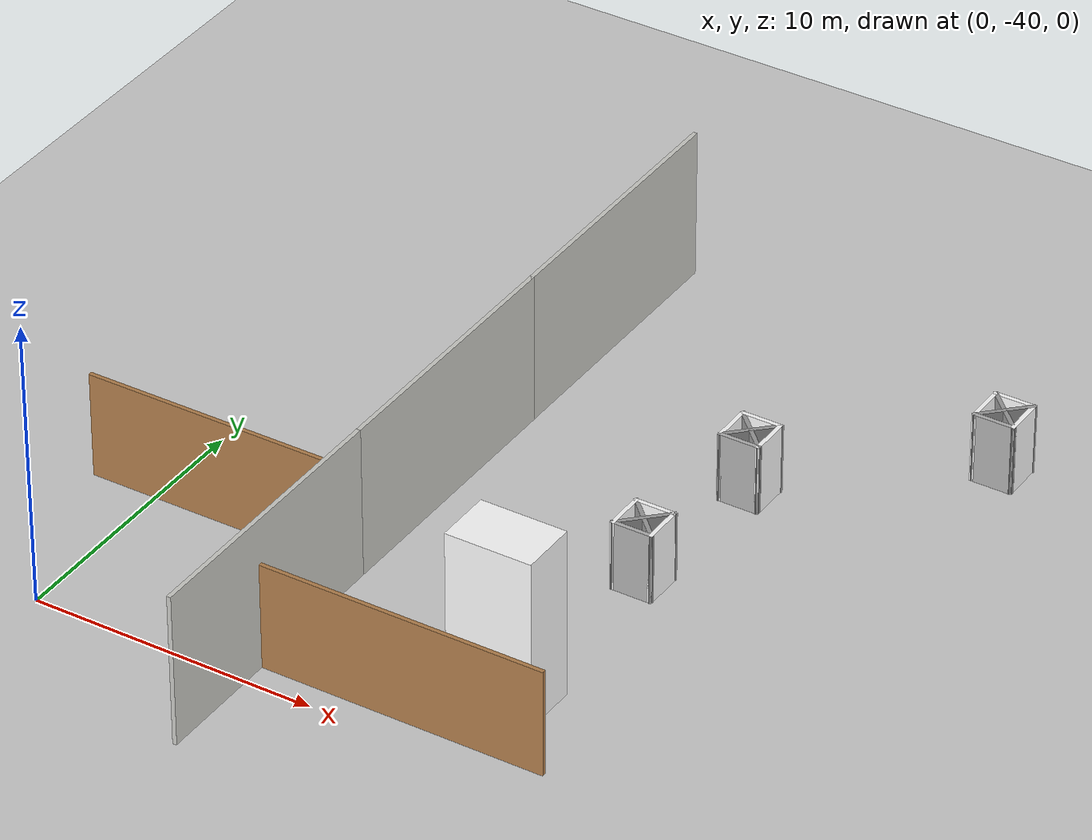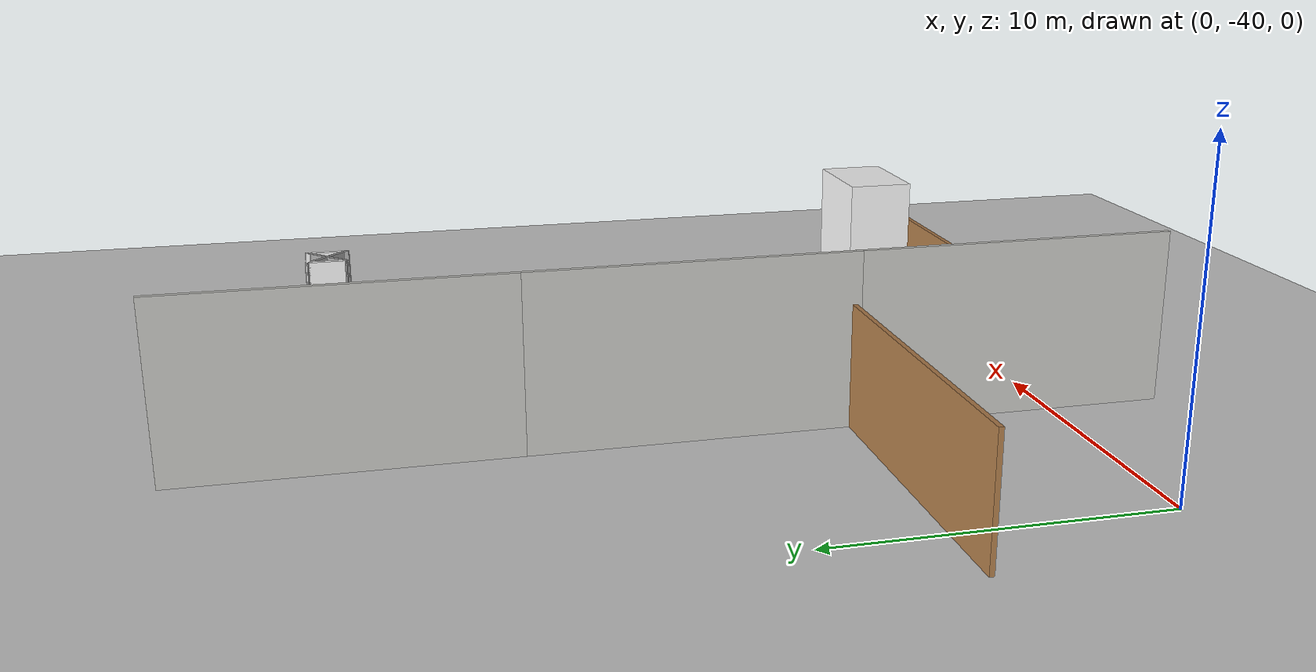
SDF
<sdf version="1.7">
 <world name="default">
  <model name="ground_plane">
   <static>1</static>
   <link name="link">
    <collision name="collision">
     <geometry><plane><normal>0 0 1</normal><size>100 100</size></plane></geometry>
     <surface>
      <contact><collide_bitmask>65535</collide_bitmask></contact>
      <friction><ode><mu>100</mu><mu2>50</mu2></ode></friction>
     </surface>
    </collision>
    <visual name="visual">
     <cast_shadows>0</cast_shadows>
     <geometry><plane><normal>0 0 1</normal><size>100 100</size></plane></geometry>
     <material>
      <script><uri>file://media/materials/scripts/gazebo.material</uri><name>Gazebo/Grey</name></script>
     </material>
    </visual>
   </link>
  </model>
  <model name="Untitled_clone_clone_1_clone_1_clone_0">
   <link name="Wall_0">
    <pose>-0.8775 -4.2975 0 0 -0 0</pose>
    <inertial>
     <mass>1</mass>
     <inertia><ixx>1</ixx><ixy>0</ixy><ixz>0</ixz><iyy>1</iyy><iyz>0</iyz><izz>1</izz></inertia>
    </inertial>
    <visual name="Wall_0_Visual">
     <pose>0 0 1.9 0 -0 0</pose>
     <geometry><box><size>10 0.15 3.8</size></box></geometry>
     <material>
      <script><uri>file://media/materials/scripts/gazebo.material</uri><name>Gazebo/Wood</name></script>
      <ambient>1 1 1 1</ambient>
      <shader type="pixel"><normal_map>__default__</normal_map></shader>
      <diffuse>1 1 1 1</diffuse>
      <specular>0.2 0.2 0.2 1</specular>
      <emissive>0 0 0 1</emissive>
     </material>
     <meta><layer>0</layer></meta>
    </visual>
    <collision name="Wall_0_Collision">
     <pose>0 0 1.9 0 -0 0</pose>
     <geometry><box><size>10 0.15 3.8</size></box></geometry>
     <surface>
      <friction>
       <ode><mu>1</mu><mu2>1</mu2><fdir1>0 0 0</fdir1><slip1>0</slip1><slip2>0</slip2></ode>
       <torsional>
        <coefficient>1</coefficient>
        <patch_radius>0</patch_radius>
        <surface_radius>0</surface_radius>
        <use_patch_radius>1</use_patch_radius>
        <ode><slip>0</slip></ode>
       </torsional>
      </friction>
      <bounce><restitution_coefficient>0</restitution_coefficient><threshold>1e+06</threshold></bounce>
      <contact>
       <collide_without_contact>0</collide_without_contact>
       <collide_without_contact_bitmask>1</collide_without_contact_bitmask>
       <collide_bitmask>1</collide_bitmask>
       <ode>
        <soft_cfm>0</soft_cfm>
        <soft_erp>0.2</soft_erp>
        <kp>1e+13</kp>
        <kd>1</kd>
        <max_vel>0.01</max_vel>
        <min_depth>0</min_depth>
       </ode>
       <bullet>
        <split_impulse>1</split_impulse>
        <split_impulse_penetration_threshold>-0.01</split_impulse_penetration_threshold>
        <soft_cfm>0</soft_cfm>
        <soft_erp>0.2</soft_erp>
        <kp>1e+13</kp>
        <kd>1</kd>
       </bullet>
      </contact>
     </surface>
    </collision>
   </link>
   <static>1</static>
   <pose>3.52995 -29.3125 0 0 -0 0</pose>
  </model>
  <model name="Untitled_0_clone_6">
   <link name="Wall_2">
    <pose>-0.3075 -1.8625 0 0 0 -1.5708</pose>
    <inertial>
     <mass>1</mass>
     <inertia><ixx>1</ixx><ixy>0</ixy><ixz>0</ixz><iyy>1</iyy><iyz>0</iyz><izz>1</izz></inertia>
    </inertial>
    <visual name="Wall_2_Visual">
     <pose>0 0 2.7 0 -0 0</pose>
     <geometry><box><size>10 0.15 5.4</size></box></geometry>
     <material>
      <script><uri>file://media/materials/scripts/gazebo.material</uri><name>Gazebo/CeilingTiled</name></script>
      <ambient>1 1 1 1</ambient>
      <shader type="pixel"><normal_map>__default__</normal_map></shader>
      <diffuse>1 1 1 1</diffuse>
      <specular>0 0 0 1</specular>
      <emissive>0 0 0 1</emissive>
     </material>
     <meta><layer>0</layer></meta>
    </visual>
    <collision name="Wall_2_Collision">
     <pose>0 0 2.7 0 -0 0</pose>
     <geometry><box><size>10 0.15 5.4</size></box></geometry>
     <surface>
      <friction>
       <ode><mu>1</mu><mu2>1</mu2><fdir1>0 0 0</fdir1><slip1>0</slip1><slip2>0</slip2></ode>
       <torsional>
        <coefficient>1</coefficient>
        <patch_radius>0</patch_radius>
        <surface_radius>0</surface_radius>
        <use_patch_radius>1</use_patch_radius>
        <ode><slip>0</slip></ode>
       </torsional>
      </friction>
      <bounce><restitution_coefficient>0</restitution_coefficient><threshold>1e+06</threshold></bounce>
      <contact>
       <collide_without_contact>0</collide_without_contact>
       <collide_without_contact_bitmask>1</collide_without_contact_bitmask>
       <collide_bitmask>1</collide_bitmask>
       <ode>
        <soft_cfm>0</soft_cfm>
        <soft_erp>0.2</soft_erp>
        <kp>1e+13</kp>
        <kd>1</kd>
        <max_vel>0.01</max_vel>
        <min_depth>0</min_depth>
       </ode>
       <bullet>
        <split_impulse>1</split_impulse>
        <split_impulse_penetration_threshold>-0.01</split_impulse_penetration_threshold>
        <soft_cfm>0</soft_cfm>
        <soft_erp>0.2</soft_erp>
        <kp>1e+13</kp>
        <kd>1</kd>
       </bullet>
      </contact>
     </surface>
    </collision>
   </link>
   <static>1</static>
   <pose>7.95129 -36.7731 0 0 -0 0</pose>
  </model>
  <model name="Untitled_clone_clone_1_clone_1_clone_1">
   <link name="Wall_0">
    <pose>-0.8775 -4.2975 0 0 -0 0</pose>
    <inertial>
     <mass>1</mass>
     <inertia><ixx>1</ixx><ixy>0</ixy><ixz>0</ixz><iyy>1</iyy><iyz>0</iyz><izz>1</izz></inertia>
    </inertial>
    <visual name="Wall_0_Visual">
     <pose>0 0 1.9 0 -0 0</pose>
     <geometry><box><size>10 0.15 3.8</size></box></geometry>
     <material>
      <script><uri>file://media/materials/scripts/gazebo.material</uri><name>Gazebo/Wood</name></script>
      <ambient>1 1 1 1</ambient>
      <shader type="pixel"><normal_map>__default__</normal_map></shader>
      <diffuse>1 1 1 1</diffuse>
      <specular>0.2 0.2 0.2 1</specular>
      <emissive>0 0 0 1</emissive>
     </material>
     <meta><layer>0</layer></meta>
    </visual>
    <collision name="Wall_0_Collision">
     <pose>0 0 1.9 0 -0 0</pose>
     <geometry><box><size>10 0.15 3.8</size></box></geometry>
     <surface>
      <friction>
       <ode><mu>1</mu><mu2>1</mu2><fdir1>0 0 0</fdir1><slip1>0</slip1><slip2>0</slip2></ode>
       <torsional>
        <coefficient>1</coefficient>
        <patch_radius>0</patch_radius>
        <surface_radius>0</surface_radius>
        <use_patch_radius>1</use_patch_radius>
        <ode><slip>0</slip></ode>
       </torsional>
      </friction>
      <bounce><restitution_coefficient>0</restitution_coefficient><threshold>1e+06</threshold></bounce>
      <contact>
       <collide_without_contact>0</collide_without_contact>
       <collide_without_contact_bitmask>1</collide_without_contact_bitmask>
       <collide_bitmask>1</collide_bitmask>
       <ode>
        <soft_cfm>0</soft_cfm>
        <soft_erp>0.2</soft_erp>
        <kp>1e+13</kp>
        <kd>1</kd>
        <max_vel>0.01</max_vel>
        <min_depth>0</min_depth>
       </ode>
       <bullet>
        <split_impulse>1</split_impulse>
        <split_impulse_penetration_threshold>-0.01</split_impulse_penetration_threshold>
        <soft_cfm>0</soft_cfm>
        <soft_erp>0.2</soft_erp>
        <kp>1e+13</kp>
        <kd>1</kd>
       </bullet>
      </contact>
     </surface>
    </collision>
   </link>
   <static>1</static>
   <pose>13.5348 -34.785 0 0 -0 0</pose>
  </model>
  <model name="Untitled_clone_clone_0_clone_clone_0_clone_0_clone_0_clone_0_clone_clone_2">
   <link name="Wall_0">
    <pose>-0.877501 -4.2975 0 0 -0 0</pose>
    <inertial>
     <mass>1</mass>
     <inertia><ixx>1</ixx><ixy>0</ixy><ixz>0</ixz><iyy>1</iyy><iyz>0</iyz><izz>1</izz></inertia>
    </inertial>
    <visual name="Wall_0_Visual">
     <pose>0 0 3 0 -0 0</pose>
     <geometry><box><size>3 2 6</size></box></geometry>
     <material>
      <script><uri>file://media/materials/scripts/gazebo.material</uri><name>Gazebo/CoM</name></script>
      <ambient>1 1 1 1</ambient>
      <shader type="pixel"><normal_map>__default__</normal_map></shader>
      <diffuse>1 1 1 1</diffuse>
      <specular>0.2 0.2 0.2 1</specular>
      <emissive>0 0 0 1</emissive>
     </material>
     <meta><layer>0</layer></meta>
    </visual>
    <collision name="Wall_0_Collision">
     <pose>0 0 3 0 -0 0</pose>
     <geometry><box><size>3 2 6</size></box></geometry>
     <surface>
      <friction>
       <ode><mu>1</mu><mu2>1</mu2><fdir1>0 0 0</fdir1><slip1>0</slip1><slip2>0</slip2></ode>
       <torsional>
        <coefficient>1</coefficient>
        <patch_radius>0</patch_radius>
        <surface_radius>0</surface_radius>
        <use_patch_radius>1</use_patch_radius>
        <ode><slip>0</slip></ode>
       </torsional>
      </friction>
      <bounce><restitution_coefficient>0</restitution_coefficient><threshold>1e+06</threshold></bounce>
      <contact>
       <collide_without_contact>0</collide_without_contact>
       <collide_without_contact_bitmask>1</collide_without_contact_bitmask>
       <collide_bitmask>1</collide_bitmask>
       <ode>
        <soft_cfm>0</soft_cfm>
        <soft_erp>0.2</soft_erp>
        <kp>1e+13</kp>
        <kd>1</kd>
        <max_vel>0.01</max_vel>
        <min_depth>0</min_depth>
       </ode>
       <bullet>
        <split_impulse>1</split_impulse>
        <split_impulse_penetration_threshold>-0.01</split_impulse_penetration_threshold>
        <soft_cfm>0</soft_cfm>
        <soft_erp>0.2</soft_erp>
        <kp>1e+13</kp>
        <kd>1</kd>
       </bullet>
      </contact>
     </surface>
    </collision>
   </link>
   <static>1</static>
   <pose>15.5462 -32.1301 0 0 -0 0</pose>
  </model>
  <model name="Untitled_0_clone_6_clone_0">
   <link name="Wall_2">
    <pose>-0.3075 -1.8625 0 0 0 -1.5708</pose>
    <inertial>
     <mass>1</mass>
     <inertia><ixx>1</ixx><ixy>0</ixy><ixz>0</ixz><iyy>1</iyy><iyz>0</iyz><izz>1</izz></inertia>
    </inertial>
    <visual name="Wall_2_Visual">
     <pose>0 0 2.7 0 -0 0</pose>
     <geometry><box><size>10 0.15 5.4</size></box></geometry>
     <material>
      <script><uri>file://media/materials/scripts/gazebo.material</uri><name>Gazebo/CeilingTiled</name></script>
      <ambient>1 1 1 1</ambient>
      <shader type="pixel"><normal_map>__default__</normal_map></shader>
      <diffuse>1 1 1 1</diffuse>
      <specular>0 0 0 1</specular>
      <emissive>0 0 0 1</emissive>
     </material>
     <meta><layer>0</layer></meta>
    </visual>
    <collision name="Wall_2_Collision">
     <pose>0 0 2.7 0 -0 0</pose>
     <geometry><box><size>10 0.15 5.4</size></box></geometry>
     <surface>
      <friction>
       <ode><mu>1</mu><mu2>1</mu2><fdir1>0 0 0</fdir1><slip1>0</slip1><slip2>0</slip2></ode>
       <torsional>
        <coefficient>1</coefficient>
        <patch_radius>0</patch_radius>
        <surface_radius>0</surface_radius>
        <use_patch_radius>1</use_patch_radius>
        <ode><slip>0</slip></ode>
       </torsional>
      </friction>
      <bounce><restitution_coefficient>0</restitution_coefficient><threshold>1e+06</threshold></bounce>
      <contact>
       <collide_without_contact>0</collide_without_contact>
       <collide_without_contact_bitmask>1</collide_without_contact_bitmask>
       <collide_bitmask>1</collide_bitmask>
       <ode>
        <soft_cfm>0</soft_cfm>
        <soft_erp>0.2</soft_erp>
        <kp>1e+13</kp>
        <kd>1</kd>
        <max_vel>0.01</max_vel>
        <min_depth>0</min_depth>
       </ode>
       <bullet>
        <split_impulse>1</split_impulse>
        <split_impulse_penetration_threshold>-0.01</split_impulse_penetration_threshold>
        <soft_cfm>0</soft_cfm>
        <soft_erp>0.2</soft_erp>
        <kp>1e+13</kp>
        <kd>1</kd>
       </bullet>
      </contact>
     </surface>
    </collision>
   </link>
   <static>1</static>
   <pose>7.94933 -26.9586 0 0 -0 0</pose>
  </model>
  <model name="Untitled_0_clone_6_clone_1">
   <link name="Wall_2">
    <pose>-0.3075 -1.8625 0 0 0 -1.5708</pose>
    <inertial>
     <mass>1</mass>
     <inertia><ixx>1</ixx><ixy>0</ixy><ixz>0</ixz><iyy>1</iyy><iyz>0</iyz><izz>1</izz></inertia>
    </inertial>
    <visual name="Wall_2_Visual">
     <pose>0 0 2.7 0 -0 0</pose>
     <geometry><box><size>10 0.15 5.4</size></box></geometry>
     <material>
      <script><uri>file://media/materials/scripts/gazebo.material</uri><name>Gazebo/CeilingTiled</name></script>
      <ambient>1 1 1 1</ambient>
      <shader type="pixel"><normal_map>__default__</normal_map></shader>
      <diffuse>1 1 1 1</diffuse>
      <specular>0 0 0 1</specular>
      <emissive>0 0 0 1</emissive>
     </material>
     <meta><layer>0</layer></meta>
    </visual>
    <collision name="Wall_2_Collision">
     <pose>0 0 2.7 0 -0 0</pose>
     <geometry><box><size>10 0.15 5.4</size></box></geometry>
     <surface>
      <friction>
       <ode><mu>1</mu><mu2>1</mu2><fdir1>0 0 0</fdir1><slip1>0</slip1><slip2>0</slip2></ode>
       <torsional>
        <coefficient>1</coefficient>
        <patch_radius>0</patch_radius>
        <surface_radius>0</surface_radius>
        <use_patch_radius>1</use_patch_radius>
        <ode><slip>0</slip></ode>
       </torsional>
      </friction>
      <bounce><restitution_coefficient>0</restitution_coefficient><threshold>1e+06</threshold></bounce>
      <contact>
       <collide_without_contact>0</collide_without_contact>
       <collide_without_contact_bitmask>1</collide_without_contact_bitmask>
       <collide_bitmask>1</collide_bitmask>
       <ode>
        <soft_cfm>0</soft_cfm>
        <soft_erp>0.2</soft_erp>
        <kp>1e+13</kp>
        <kd>1</kd>
        <max_vel>0.01</max_vel>
        <min_depth>0</min_depth>
       </ode>
       <bullet>
        <split_impulse>1</split_impulse>
        <split_impulse_penetration_threshold>-0.01</split_impulse_penetration_threshold>
        <soft_cfm>0</soft_cfm>
        <soft_erp>0.2</soft_erp>
        <kp>1e+13</kp>
        <kd>1</kd>
       </bullet>
      </contact>
     </surface>
    </collision>
   </link>
   <static>1</static>
   <pose>7.94435 -17.0577 0 0 -0 0</pose>
  </model>
  <model name="Untitled_1_clone_3_clone_clone_0">
   <link name="Wall_10">
    <pose>4.92197 -3.43197 0 0 -0 1.5708</pose>
    <inertial>
     <mass>1</mass>
     <inertia><ixx>1</ixx><ixy>0</ixy><ixz>0</ixz><iyy>1</iyy><iyz>0</iyz><izz>1</izz></inertia>
    </inertial>
    <visual name="Wall_10_Visual">
     <pose>0 0 1.25 0 -0 0</pose>
     <geometry><box><size>1.5 0.15 2.5</size></box></geometry>
     <material>
      <script><uri>file://media/materials/scripts/gazebo.material</uri><name>Gazebo/CoM</name></script>
      <ambient>1 1 1 1</ambient>
      <shader type="pixel"><normal_map>__default__</normal_map></shader>
      <diffuse>1 1 1 1</diffuse>
      <specular>0 0 0 1</specular>
      <emissive>0 0 0 1</emissive>
     </material>
     <meta><layer>0</layer></meta>
    </visual>
    <collision name="Wall_10_Collision">
     <pose>0 0 1.25 0 -0 0</pose>
     <geometry><box><size>1.5 0.15 2.5</size></box></geometry>
     <surface>
      <friction>
       <ode><mu>1</mu><mu2>1</mu2><fdir1>0 0 0</fdir1><slip1>0</slip1><slip2>0</slip2></ode>
       <torsional>
        <coefficient>1</coefficient>
        <patch_radius>0</patch_radius>
        <surface_radius>0</surface_radius>
        <use_patch_radius>1</use_patch_radius>
        <ode><slip>0</slip></ode>
       </torsional>
      </friction>
      <bounce><restitution_coefficient>0</restitution_coefficient><threshold>1e+06</threshold></bounce>
      <contact>
       <collide_without_contact>0</collide_without_contact>
       <collide_without_contact_bitmask>1</collide_without_contact_bitmask>
       <collide_bitmask>1</collide_bitmask>
       <ode>
        <soft_cfm>0</soft_cfm>
        <soft_erp>0.2</soft_erp>
        <kp>1e+13</kp>
        <kd>1</kd>
        <max_vel>0.01</max_vel>
        <min_depth>0</min_depth>
       </ode>
       <bullet>
        <split_impulse>1</split_impulse>
        <split_impulse_penetration_threshold>-0.01</split_impulse_penetration_threshold>
        <soft_cfm>0</soft_cfm>
        <soft_erp>0.2</soft_erp>
        <kp>1e+13</kp>
        <kd>1</kd>
       </bullet>
      </contact>
     </surface>
    </collision>
   </link>
   <link name="Wall_11">
    <pose>5.59697 -3.43197 0 0 0 -0.785398</pose>
    <visual name="Wall_11_Visual">
     <pose>0 0 1.25 0 -0 0</pose>
     <geometry><box><size>2.05919 0.15 2.5</size></box></geometry>
     <material>
      <script><uri>file://media/materials/scripts/gazebo.material</uri><name>Gazebo/Grey</name></script>
      <ambient>1 1 1 1</ambient>
      <shader type="pixel"/>
     </material>
     <meta><layer>0</layer></meta>
    </visual>
    <collision name="Wall_11_Collision">
     <pose>0 0 1.25 0 -0 0</pose>
     <geometry><box><size>2.05919 0.15 2.5</size></box></geometry>
     <surface>
      <friction>
       <ode><mu>1</mu><mu2>1</mu2><fdir1>0 0 0</fdir1><slip1>0</slip1><slip2>0</slip2></ode>
       <torsional>
        <coefficient>1</coefficient>
        <patch_radius>0</patch_radius>
        <surface_radius>0</surface_radius>
        <use_patch_radius>1</use_patch_radius>
        <ode><slip>0</slip></ode>
       </torsional>
      </friction>
      <bounce><restitution_coefficient>0</restitution_coefficient><threshold>1e+06</threshold></bounce>
      <contact>
       <collide_without_contact>0</collide_without_contact>
       <collide_without_contact_bitmask>1</collide_without_contact_bitmask>
       <collide_bitmask>1</collide_bitmask>
       <ode>
        <soft_cfm>0</soft_cfm>
        <soft_erp>0.2</soft_erp>
        <kp>1e+13</kp>
        <kd>1</kd>
        <max_vel>0.01</max_vel>
        <min_depth>0</min_depth>
       </ode>
       <bullet>
        <split_impulse>1</split_impulse>
        <split_impulse_penetration_threshold>-0.01</split_impulse_penetration_threshold>
        <soft_cfm>0</soft_cfm>
        <soft_erp>0.2</soft_erp>
        <kp>1e+13</kp>
        <kd>1</kd>
       </bullet>
      </contact>
     </surface>
    </collision>
   </link>
   <link name="Wall_13">
    <pose>5.59697 -3.43197 0 0 -0 0.785398</pose>
    <visual name="Wall_13_Visual">
     <pose>0 0 1.25 0 -0 0</pose>
     <geometry><box><size>2.05919 0.15 2.5</size></box></geometry>
     <material>
      <script><uri>file://media/materials/scripts/gazebo.material</uri><name>Gazebo/Grey</name></script>
      <ambient>1 1 1 1</ambient>
      <shader type="pixel"/>
     </material>
     <meta><layer>0</layer></meta>
    </visual>
    <collision name="Wall_13_Collision">
     <pose>0 0 1.25 0 -0 0</pose>
     <geometry><box><size>2.05919 0.15 2.5</size></box></geometry>
     <surface>
      <friction>
       <ode><mu>1</mu><mu2>1</mu2><fdir1>0 0 0</fdir1><slip1>0</slip1><slip2>0</slip2></ode>
       <torsional>
        <coefficient>1</coefficient>
        <patch_radius>0</patch_radius>
        <surface_radius>0</surface_radius>
        <use_patch_radius>1</use_patch_radius>
        <ode><slip>0</slip></ode>
       </torsional>
      </friction>
      <bounce><restitution_coefficient>0</restitution_coefficient><threshold>1e+06</threshold></bounce>
      <contact>
       <collide_without_contact>0</collide_without_contact>
       <collide_without_contact_bitmask>1</collide_without_contact_bitmask>
       <collide_bitmask>1</collide_bitmask>
       <ode>
        <soft_cfm>0</soft_cfm>
        <soft_erp>0.2</soft_erp>
        <kp>1e+13</kp>
        <kd>1</kd>
        <max_vel>0.01</max_vel>
        <min_depth>0</min_depth>
       </ode>
       <bullet>
        <split_impulse>1</split_impulse>
        <split_impulse_penetration_threshold>-0.01</split_impulse_penetration_threshold>
        <soft_cfm>0</soft_cfm>
        <soft_erp>0.2</soft_erp>
        <kp>1e+13</kp>
        <kd>1</kd>
       </bullet>
      </contact>
     </surface>
    </collision>
   </link>
   <link name="Wall_7">
    <pose>5.59697 -2.75697 0 0 -0 0</pose>
    <inertial>
     <mass>1</mass>
     <inertia><ixx>1</ixx><ixy>0</ixy><ixz>0</ixz><iyy>1</iyy><iyz>0</iyz><izz>1</izz></inertia>
    </inertial>
    <visual name="Wall_7_Visual">
     <pose>0 0 1.25 0 -0 0</pose>
     <geometry><box><size>1.5 0.15 2.5</size></box></geometry>
     <material>
      <script><uri>file://media/materials/scripts/gazebo.material</uri><name>Gazebo/CoM</name></script>
      <ambient>1 1 1 1</ambient>
      <shader type="pixel"><normal_map>__default__</normal_map></shader>
      <diffuse>1 1 1 1</diffuse>
      <specular>0 0 0 1</specular>
      <emissive>0 0 0 1</emissive>
     </material>
     <meta><layer>0</layer></meta>
    </visual>
    <collision name="Wall_7_Collision">
     <pose>0 0 1.25 0 -0 0</pose>
     <geometry><box><size>1.5 0.15 2.5</size></box></geometry>
     <surface>
      <friction>
       <ode><mu>1</mu><mu2>1</mu2><fdir1>0 0 0</fdir1><slip1>0</slip1><slip2>0</slip2></ode>
       <torsional>
        <coefficient>1</coefficient>
        <patch_radius>0</patch_radius>
        <surface_radius>0</surface_radius>
        <use_patch_radius>1</use_patch_radius>
        <ode><slip>0</slip></ode>
       </torsional>
      </friction>
      <bounce><restitution_coefficient>0</restitution_coefficient><threshold>1e+06</threshold></bounce>
      <contact>
       <collide_without_contact>0</collide_without_contact>
       <collide_without_contact_bitmask>1</collide_without_contact_bitmask>
       <collide_bitmask>1</collide_bitmask>
       <ode>
        <soft_cfm>0</soft_cfm>
        <soft_erp>0.2</soft_erp>
        <kp>1e+13</kp>
        <kd>1</kd>
        <max_vel>0.01</max_vel>
        <min_depth>0</min_depth>
       </ode>
       <bullet>
        <split_impulse>1</split_impulse>
        <split_impulse_penetration_threshold>-0.01</split_impulse_penetration_threshold>
        <soft_cfm>0</soft_cfm>
        <soft_erp>0.2</soft_erp>
        <kp>1e+13</kp>
        <kd>1</kd>
       </bullet>
      </contact>
     </surface>
    </collision>
   </link>
   <link name="Wall_8">
    <pose>6.27197 -3.43197 0 0 0 -1.5708</pose>
    <inertial>
     <mass>1</mass>
     <inertia><ixx>1</ixx><ixy>0</ixy><ixz>0</ixz><iyy>1</iyy><iyz>0</iyz><izz>1</izz></inertia>
    </inertial>
    <visual name="Wall_8_Visual">
     <pose>0 0 1.25 0 -0 0</pose>
     <geometry><box><size>1.5 0.15 2.5</size></box></geometry>
     <material>
      <script><uri>file://media/materials/scripts/gazebo.material</uri><name>Gazebo/CoM</name></script>
      <ambient>1 1 1 1</ambient>
      <shader type="pixel"><normal_map>__default__</normal_map></shader>
      <diffuse>1 1 1 1</diffuse>
      <specular>0 0 0 1</specular>
      <emissive>0 0 0 1</emissive>
     </material>
     <meta><layer>0</layer></meta>
    </visual>
    <collision name="Wall_8_Collision">
     <pose>0 0 1.25 0 -0 0</pose>
     <geometry><box><size>1.5 0.15 2.5</size></box></geometry>
     <surface>
      <friction>
       <ode><mu>1</mu><mu2>1</mu2><fdir1>0 0 0</fdir1><slip1>0</slip1><slip2>0</slip2></ode>
       <torsional>
        <coefficient>1</coefficient>
        <patch_radius>0</patch_radius>
        <surface_radius>0</surface_radius>
        <use_patch_radius>1</use_patch_radius>
        <ode><slip>0</slip></ode>
       </torsional>
      </friction>
      <bounce><restitution_coefficient>0</restitution_coefficient><threshold>1e+06</threshold></bounce>
      <contact>
       <collide_without_contact>0</collide_without_contact>
       <collide_without_contact_bitmask>1</collide_without_contact_bitmask>
       <collide_bitmask>1</collide_bitmask>
       <ode>
        <soft_cfm>0</soft_cfm>
        <soft_erp>0.2</soft_erp>
        <kp>1e+13</kp>
        <kd>1</kd>
        <max_vel>0.01</max_vel>
        <min_depth>0</min_depth>
       </ode>
       <bullet>
        <split_impulse>1</split_impulse>
        <split_impulse_penetration_threshold>-0.01</split_impulse_penetration_threshold>
        <soft_cfm>0</soft_cfm>
        <soft_erp>0.2</soft_erp>
        <kp>1e+13</kp>
        <kd>1</kd>
       </bullet>
      </contact>
     </surface>
    </collision>
   </link>
   <link name="Wall_9">
    <pose>5.59697 -4.10697 0 0 -0 3.14159</pose>
    <inertial>
     <mass>1</mass>
     <inertia><ixx>1</ixx><ixy>0</ixy><ixz>0</ixz><iyy>1</iyy><iyz>0</iyz><izz>1</izz></inertia>
    </inertial>
    <visual name="Wall_9_Visual">
     <pose>0 0 1.25 0 -0 0</pose>
     <geometry><box><size>1.5 0.15 2.5</size></box></geometry>
     <material>
      <script><uri>file://media/materials/scripts/gazebo.material</uri><name>Gazebo/CoM</name></script>
      <ambient>1 1 1 1</ambient>
      <shader type="pixel"><normal_map>__default__</normal_map></shader>
      <diffuse>0.7 0.7 0.7 1</diffuse>
      <specular>0.01 0.01 0.01 1</specular>
      <emissive>0 0 0 1</emissive>
     </material>
     <meta><layer>0</layer></meta>
    </visual>
    <collision name="Wall_9_Collision">
     <pose>0 0 1.25 0 -0 0</pose>
     <geometry><box><size>1.5 0.15 2.5</size></box></geometry>
     <surface>
      <friction>
       <ode><mu>1</mu><mu2>1</mu2><fdir1>0 0 0</fdir1><slip1>0</slip1><slip2>0</slip2></ode>
       <torsional>
        <coefficient>1</coefficient>
        <patch_radius>0</patch_radius>
        <surface_radius>0</surface_radius>
        <use_patch_radius>1</use_patch_radius>
        <ode><slip>0</slip></ode>
       </torsional>
      </friction>
      <bounce><restitution_coefficient>0</restitution_coefficient><threshold>1e+06</threshold></bounce>
      <contact>
       <collide_without_contact>0</collide_without_contact>
       <collide_without_contact_bitmask>1</collide_without_contact_bitmask>
       <collide_bitmask>1</collide_bitmask>
       <ode>
        <soft_cfm>0</soft_cfm>
        <soft_erp>0.2</soft_erp>
        <kp>1e+13</kp>
        <kd>1</kd>
        <max_vel>0.01</max_vel>
        <min_depth>0</min_depth>
       </ode>
       <bullet>
        <split_impulse>1</split_impulse>
        <split_impulse_penetration_threshold>-0.01</split_impulse_penetration_threshold>
        <soft_cfm>0</soft_cfm>
        <soft_erp>0.2</soft_erp>
        <kp>1e+13</kp>
        <kd>1</kd>
       </bullet>
      </contact>
     </surface>
    </collision>
   </link>
   <static>1</static>
   <pose>9.59863 -26.0483 0 0 -0 0</pose>
  </model>
  <model name="Untitled_1_clone_3_clone_clone_2">
   <link name="Wall_10">
    <pose>4.92197 -3.43197 0 0 -0 1.5708</pose>
    <inertial>
     <mass>1</mass>
     <inertia><ixx>1</ixx><ixy>0</ixy><ixz>0</ixz><iyy>1</iyy><iyz>0</iyz><izz>1</izz></inertia>
    </inertial>
    <visual name="Wall_10_Visual">
     <pose>0 0 1.25 0 -0 0</pose>
     <geometry><box><size>1.5 0.15 2.5</size></box></geometry>
     <material>
      <script><uri>file://media/materials/scripts/gazebo.material</uri><name>Gazebo/CoM</name></script>
      <ambient>1 1 1 1</ambient>
      <shader type="pixel"><normal_map>__default__</normal_map></shader>
      <diffuse>1 1 1 1</diffuse>
      <specular>0 0 0 1</specular>
      <emissive>0 0 0 1</emissive>
     </material>
     <meta><layer>0</layer></meta>
    </visual>
    <collision name="Wall_10_Collision">
     <pose>0 0 1.25 0 -0 0</pose>
     <geometry><box><size>1.5 0.15 2.5</size></box></geometry>
     <surface>
      <friction>
       <ode><mu>1</mu><mu2>1</mu2><fdir1>0 0 0</fdir1><slip1>0</slip1><slip2>0</slip2></ode>
       <torsional>
        <coefficient>1</coefficient>
        <patch_radius>0</patch_radius>
        <surface_radius>0</surface_radius>
        <use_patch_radius>1</use_patch_radius>
        <ode><slip>0</slip></ode>
       </torsional>
      </friction>
      <bounce><restitution_coefficient>0</restitution_coefficient><threshold>1e+06</threshold></bounce>
      <contact>
       <collide_without_contact>0</collide_without_contact>
       <collide_without_contact_bitmask>1</collide_without_contact_bitmask>
       <collide_bitmask>1</collide_bitmask>
       <ode>
        <soft_cfm>0</soft_cfm>
        <soft_erp>0.2</soft_erp>
        <kp>1e+13</kp>
        <kd>1</kd>
        <max_vel>0.01</max_vel>
        <min_depth>0</min_depth>
       </ode>
       <bullet>
        <split_impulse>1</split_impulse>
        <split_impulse_penetration_threshold>-0.01</split_impulse_penetration_threshold>
        <soft_cfm>0</soft_cfm>
        <soft_erp>0.2</soft_erp>
        <kp>1e+13</kp>
        <kd>1</kd>
       </bullet>
      </contact>
     </surface>
    </collision>
   </link>
   <link name="Wall_11">
    <pose>5.59697 -3.43197 0 0 0 -0.785398</pose>
    <visual name="Wall_11_Visual">
     <pose>0 0 1.25 0 -0 0</pose>
     <geometry><box><size>2.05919 0.15 2.5</size></box></geometry>
     <material>
      <script><uri>file://media/materials/scripts/gazebo.material</uri><name>Gazebo/Grey</name></script>
      <ambient>1 1 1 1</ambient>
      <shader type="pixel"/>
     </material>
     <meta><layer>0</layer></meta>
    </visual>
    <collision name="Wall_11_Collision">
     <pose>0 0 1.25 0 -0 0</pose>
     <geometry><box><size>2.05919 0.15 2.5</size></box></geometry>
     <surface>
      <friction>
       <ode><mu>1</mu><mu2>1</mu2><fdir1>0 0 0</fdir1><slip1>0</slip1><slip2>0</slip2></ode>
       <torsional>
        <coefficient>1</coefficient>
        <patch_radius>0</patch_radius>
        <surface_radius>0</surface_radius>
        <use_patch_radius>1</use_patch_radius>
        <ode><slip>0</slip></ode>
       </torsional>
      </friction>
      <bounce><restitution_coefficient>0</restitution_coefficient><threshold>1e+06</threshold></bounce>
      <contact>
       <collide_without_contact>0</collide_without_contact>
       <collide_without_contact_bitmask>1</collide_without_contact_bitmask>
       <collide_bitmask>1</collide_bitmask>
       <ode>
        <soft_cfm>0</soft_cfm>
        <soft_erp>0.2</soft_erp>
        <kp>1e+13</kp>
        <kd>1</kd>
        <max_vel>0.01</max_vel>
        <min_depth>0</min_depth>
       </ode>
       <bullet>
        <split_impulse>1</split_impulse>
        <split_impulse_penetration_threshold>-0.01</split_impulse_penetration_threshold>
        <soft_cfm>0</soft_cfm>
        <soft_erp>0.2</soft_erp>
        <kp>1e+13</kp>
        <kd>1</kd>
       </bullet>
      </contact>
     </surface>
    </collision>
   </link>
   <link name="Wall_13">
    <pose>5.59697 -3.43197 0 0 -0 0.785398</pose>
    <visual name="Wall_13_Visual">
     <pose>0 0 1.25 0 -0 0</pose>
     <geometry><box><size>2.05919 0.15 2.5</size></box></geometry>
     <material>
      <script><uri>file://media/materials/scripts/gazebo.material</uri><name>Gazebo/Grey</name></script>
      <ambient>1 1 1 1</ambient>
      <shader type="pixel"/>
     </material>
     <meta><layer>0</layer></meta>
    </visual>
    <collision name="Wall_13_Collision">
     <pose>0 0 1.25 0 -0 0</pose>
     <geometry><box><size>2.05919 0.15 2.5</size></box></geometry>
     <surface>
      <friction>
       <ode><mu>1</mu><mu2>1</mu2><fdir1>0 0 0</fdir1><slip1>0</slip1><slip2>0</slip2></ode>
       <torsional>
        <coefficient>1</coefficient>
        <patch_radius>0</patch_radius>
        <surface_radius>0</surface_radius>
        <use_patch_radius>1</use_patch_radius>
        <ode><slip>0</slip></ode>
       </torsional>
      </friction>
      <bounce><restitution_coefficient>0</restitution_coefficient><threshold>1e+06</threshold></bounce>
      <contact>
       <collide_without_contact>0</collide_without_contact>
       <collide_without_contact_bitmask>1</collide_without_contact_bitmask>
       <collide_bitmask>1</collide_bitmask>
       <ode>
        <soft_cfm>0</soft_cfm>
        <soft_erp>0.2</soft_erp>
        <kp>1e+13</kp>
        <kd>1</kd>
        <max_vel>0.01</max_vel>
        <min_depth>0</min_depth>
       </ode>
       <bullet>
        <split_impulse>1</split_impulse>
        <split_impulse_penetration_threshold>-0.01</split_impulse_penetration_threshold>
        <soft_cfm>0</soft_cfm>
        <soft_erp>0.2</soft_erp>
        <kp>1e+13</kp>
        <kd>1</kd>
       </bullet>
      </contact>
     </surface>
    </collision>
   </link>
   <link name="Wall_7">
    <pose>5.59697 -2.75697 0 0 -0 0</pose>
    <inertial>
     <mass>1</mass>
     <inertia><ixx>1</ixx><ixy>0</ixy><ixz>0</ixz><iyy>1</iyy><iyz>0</iyz><izz>1</izz></inertia>
    </inertial>
    <visual name="Wall_7_Visual">
     <pose>0 0 1.25 0 -0 0</pose>
     <geometry><box><size>1.5 0.15 2.5</size></box></geometry>
     <material>
      <script><uri>file://media/materials/scripts/gazebo.material</uri><name>Gazebo/CoM</name></script>
      <ambient>1 1 1 1</ambient>
      <shader type="pixel"><normal_map>__default__</normal_map></shader>
      <diffuse>1 1 1 1</diffuse>
      <specular>0 0 0 1</specular>
      <emissive>0 0 0 1</emissive>
     </material>
     <meta><layer>0</layer></meta>
    </visual>
    <collision name="Wall_7_Collision">
     <pose>0 0 1.25 0 -0 0</pose>
     <geometry><box><size>1.5 0.15 2.5</size></box></geometry>
     <surface>
      <friction>
       <ode><mu>1</mu><mu2>1</mu2><fdir1>0 0 0</fdir1><slip1>0</slip1><slip2>0</slip2></ode>
       <torsional>
        <coefficient>1</coefficient>
        <patch_radius>0</patch_radius>
        <surface_radius>0</surface_radius>
        <use_patch_radius>1</use_patch_radius>
        <ode><slip>0</slip></ode>
       </torsional>
      </friction>
      <bounce><restitution_coefficient>0</restitution_coefficient><threshold>1e+06</threshold></bounce>
      <contact>
       <collide_without_contact>0</collide_without_contact>
       <collide_without_contact_bitmask>1</collide_without_contact_bitmask>
       <collide_bitmask>1</collide_bitmask>
       <ode>
        <soft_cfm>0</soft_cfm>
        <soft_erp>0.2</soft_erp>
        <kp>1e+13</kp>
        <kd>1</kd>
        <max_vel>0.01</max_vel>
        <min_depth>0</min_depth>
       </ode>
       <bullet>
        <split_impulse>1</split_impulse>
        <split_impulse_penetration_threshold>-0.01</split_impulse_penetration_threshold>
        <soft_cfm>0</soft_cfm>
        <soft_erp>0.2</soft_erp>
        <kp>1e+13</kp>
        <kd>1</kd>
       </bullet>
      </contact>
     </surface>
    </collision>
   </link>
   <link name="Wall_8">
    <pose>6.27197 -3.43197 0 0 0 -1.5708</pose>
    <inertial>
     <mass>1</mass>
     <inertia><ixx>1</ixx><ixy>0</ixy><ixz>0</ixz><iyy>1</iyy><iyz>0</iyz><izz>1</izz></inertia>
    </inertial>
    <visual name="Wall_8_Visual">
     <pose>0 0 1.25 0 -0 0</pose>
     <geometry><box><size>1.5 0.15 2.5</size></box></geometry>
     <material>
      <script><uri>file://media/materials/scripts/gazebo.material</uri><name>Gazebo/CoM</name></script>
      <ambient>1 1 1 1</ambient>
      <shader type="pixel"><normal_map>__default__</normal_map></shader>
      <diffuse>1 1 1 1</diffuse>
      <specular>0 0 0 1</specular>
      <emissive>0 0 0 1</emissive>
     </material>
     <meta><layer>0</layer></meta>
    </visual>
    <collision name="Wall_8_Collision">
     <pose>0 0 1.25 0 -0 0</pose>
     <geometry><box><size>1.5 0.15 2.5</size></box></geometry>
     <surface>
      <friction>
       <ode><mu>1</mu><mu2>1</mu2><fdir1>0 0 0</fdir1><slip1>0</slip1><slip2>0</slip2></ode>
       <torsional>
        <coefficient>1</coefficient>
        <patch_radius>0</patch_radius>
        <surface_radius>0</surface_radius>
        <use_patch_radius>1</use_patch_radius>
        <ode><slip>0</slip></ode>
       </torsional>
      </friction>
      <bounce><restitution_coefficient>0</restitution_coefficient><threshold>1e+06</threshold></bounce>
      <contact>
       <collide_without_contact>0</collide_without_contact>
       <collide_without_contact_bitmask>1</collide_without_contact_bitmask>
       <collide_bitmask>1</collide_bitmask>
       <ode>
        <soft_cfm>0</soft_cfm>
        <soft_erp>0.2</soft_erp>
        <kp>1e+13</kp>
        <kd>1</kd>
        <max_vel>0.01</max_vel>
        <min_depth>0</min_depth>
       </ode>
       <bullet>
        <split_impulse>1</split_impulse>
        <split_impulse_penetration_threshold>-0.01</split_impulse_penetration_threshold>
        <soft_cfm>0</soft_cfm>
        <soft_erp>0.2</soft_erp>
        <kp>1e+13</kp>
        <kd>1</kd>
       </bullet>
      </contact>
     </surface>
    </collision>
   </link>
   <link name="Wall_9">
    <pose>5.59697 -4.10697 0 0 -0 3.14159</pose>
    <inertial>
     <mass>1</mass>
     <inertia><ixx>1</ixx><ixy>0</ixy><ixz>0</ixz><iyy>1</iyy><iyz>0</iyz><izz>1</izz></inertia>
    </inertial>
    <visual name="Wall_9_Visual">
     <pose>0 0 1.25 0 -0 0</pose>
     <geometry><box><size>1.5 0.15 2.5</size></box></geometry>
     <material>
      <script><uri>file://media/materials/scripts/gazebo.material</uri><name>Gazebo/CoM</name></script>
      <ambient>1 1 1 1</ambient>
      <shader type="pixel"><normal_map>__default__</normal_map></shader>
      <diffuse>0.7 0.7 0.7 1</diffuse>
      <specular>0.01 0.01 0.01 1</specular>
      <emissive>0 0 0 1</emissive>
     </material>
     <meta><layer>0</layer></meta>
    </visual>
    <collision name="Wall_9_Collision">
     <pose>0 0 1.25 0 -0 0</pose>
     <geometry><box><size>1.5 0.15 2.5</size></box></geometry>
     <surface>
      <friction>
       <ode><mu>1</mu><mu2>1</mu2><fdir1>0 0 0</fdir1><slip1>0</slip1><slip2>0</slip2></ode>
       <torsional>
        <coefficient>1</coefficient>
        <patch_radius>0</patch_radius>
        <surface_radius>0</surface_radius>
        <use_patch_radius>1</use_patch_radius>
        <ode><slip>0</slip></ode>
       </torsional>
      </friction>
      <bounce><restitution_coefficient>0</restitution_coefficient><threshold>1e+06</threshold></bounce>
      <contact>
       <collide_without_contact>0</collide_without_contact>
       <collide_without_contact_bitmask>1</collide_without_contact_bitmask>
       <collide_bitmask>1</collide_bitmask>
       <ode>
        <soft_cfm>0</soft_cfm>
        <soft_erp>0.2</soft_erp>
        <kp>1e+13</kp>
        <kd>1</kd>
        <max_vel>0.01</max_vel>
        <min_depth>0</min_depth>
       </ode>
       <bullet>
        <split_impulse>1</split_impulse>
        <split_impulse_penetration_threshold>-0.01</split_impulse_penetration_threshold>
        <soft_cfm>0</soft_cfm>
        <soft_erp>0.2</soft_erp>
        <kp>1e+13</kp>
        <kd>1</kd>
       </bullet>
      </contact>
     </surface>
    </collision>
   </link>
   <static>1</static>
   <pose>9.98203 -20.3247 0 0 -0 0</pose>
  </model>
  <model name="Untitled_1_clone_3_clone_clone_3">
   <link name="Wall_10">
    <pose>4.92197 -3.43197 0 0 -0 1.5708</pose>
    <inertial>
     <mass>1</mass>
     <inertia><ixx>1</ixx><ixy>0</ixy><ixz>0</ixz><iyy>1</iyy><iyz>0</iyz><izz>1</izz></inertia>
    </inertial>
    <visual name="Wall_10_Visual">
     <pose>0 0 1.25 0 -0 0</pose>
     <geometry><box><size>1.5 0.15 2.5</size></box></geometry>
     <material>
      <script><uri>file://media/materials/scripts/gazebo.material</uri><name>Gazebo/CoM</name></script>
      <ambient>1 1 1 1</ambient>
      <shader type="pixel"><normal_map>__default__</normal_map></shader>
      <diffuse>1 1 1 1</diffuse>
      <specular>0 0 0 1</specular>
      <emissive>0 0 0 1</emissive>
     </material>
     <meta><layer>0</layer></meta>
    </visual>
    <collision name="Wall_10_Collision">
     <pose>0 0 1.25 0 -0 0</pose>
     <geometry><box><size>1.5 0.15 2.5</size></box></geometry>
     <surface>
      <friction>
       <ode><mu>1</mu><mu2>1</mu2><fdir1>0 0 0</fdir1><slip1>0</slip1><slip2>0</slip2></ode>
       <torsional>
        <coefficient>1</coefficient>
        <patch_radius>0</patch_radius>
        <surface_radius>0</surface_radius>
        <use_patch_radius>1</use_patch_radius>
        <ode><slip>0</slip></ode>
       </torsional>
      </friction>
      <bounce><restitution_coefficient>0</restitution_coefficient><threshold>1e+06</threshold></bounce>
      <contact>
       <collide_without_contact>0</collide_without_contact>
       <collide_without_contact_bitmask>1</collide_without_contact_bitmask>
       <collide_bitmask>1</collide_bitmask>
       <ode>
        <soft_cfm>0</soft_cfm>
        <soft_erp>0.2</soft_erp>
        <kp>1e+13</kp>
        <kd>1</kd>
        <max_vel>0.01</max_vel>
        <min_depth>0</min_depth>
       </ode>
       <bullet>
        <split_impulse>1</split_impulse>
        <split_impulse_penetration_threshold>-0.01</split_impulse_penetration_threshold>
        <soft_cfm>0</soft_cfm>
        <soft_erp>0.2</soft_erp>
        <kp>1e+13</kp>
        <kd>1</kd>
       </bullet>
      </contact>
     </surface>
    </collision>
   </link>
   <link name="Wall_11">
    <pose>5.59697 -3.43197 0 0 0 -0.785398</pose>
    <visual name="Wall_11_Visual">
     <pose>0 0 1.25 0 -0 0</pose>
     <geometry><box><size>2.05919 0.15 2.5</size></box></geometry>
     <material>
      <script><uri>file://media/materials/scripts/gazebo.material</uri><name>Gazebo/Grey</name></script>
      <ambient>1 1 1 1</ambient>
      <shader type="pixel"/>
     </material>
     <meta><layer>0</layer></meta>
    </visual>
    <collision name="Wall_11_Collision">
     <pose>0 0 1.25 0 -0 0</pose>
     <geometry><box><size>2.05919 0.15 2.5</size></box></geometry>
     <surface>
      <friction>
       <ode><mu>1</mu><mu2>1</mu2><fdir1>0 0 0</fdir1><slip1>0</slip1><slip2>0</slip2></ode>
       <torsional>
        <coefficient>1</coefficient>
        <patch_radius>0</patch_radius>
        <surface_radius>0</surface_radius>
        <use_patch_radius>1</use_patch_radius>
        <ode><slip>0</slip></ode>
       </torsional>
      </friction>
      <bounce><restitution_coefficient>0</restitution_coefficient><threshold>1e+06</threshold></bounce>
      <contact>
       <collide_without_contact>0</collide_without_contact>
       <collide_without_contact_bitmask>1</collide_without_contact_bitmask>
       <collide_bitmask>1</collide_bitmask>
       <ode>
        <soft_cfm>0</soft_cfm>
        <soft_erp>0.2</soft_erp>
        <kp>1e+13</kp>
        <kd>1</kd>
        <max_vel>0.01</max_vel>
        <min_depth>0</min_depth>
       </ode>
       <bullet>
        <split_impulse>1</split_impulse>
        <split_impulse_penetration_threshold>-0.01</split_impulse_penetration_threshold>
        <soft_cfm>0</soft_cfm>
        <soft_erp>0.2</soft_erp>
        <kp>1e+13</kp>
        <kd>1</kd>
       </bullet>
      </contact>
     </surface>
    </collision>
   </link>
   <link name="Wall_13">
    <pose>5.59697 -3.43197 0 0 -0 0.785398</pose>
    <visual name="Wall_13_Visual">
     <pose>0 0 1.25 0 -0 0</pose>
     <geometry><box><size>2.05919 0.15 2.5</size></box></geometry>
     <material>
      <script><uri>file://media/materials/scripts/gazebo.material</uri><name>Gazebo/Grey</name></script>
      <ambient>1 1 1 1</ambient>
      <shader type="pixel"/>
     </material>
     <meta><layer>0</layer></meta>
    </visual>
    <collision name="Wall_13_Collision">
     <pose>0 0 1.25 0 -0 0</pose>
     <geometry><box><size>2.05919 0.15 2.5</size></box></geometry>
     <surface>
      <friction>
       <ode><mu>1</mu><mu2>1</mu2><fdir1>0 0 0</fdir1><slip1>0</slip1><slip2>0</slip2></ode>
       <torsional>
        <coefficient>1</coefficient>
        <patch_radius>0</patch_radius>
        <surface_radius>0</surface_radius>
        <use_patch_radius>1</use_patch_radius>
        <ode><slip>0</slip></ode>
       </torsional>
      </friction>
      <bounce><restitution_coefficient>0</restitution_coefficient><threshold>1e+06</threshold></bounce>
      <contact>
       <collide_without_contact>0</collide_without_contact>
       <collide_without_contact_bitmask>1</collide_without_contact_bitmask>
       <collide_bitmask>1</collide_bitmask>
       <ode>
        <soft_cfm>0</soft_cfm>
        <soft_erp>0.2</soft_erp>
        <kp>1e+13</kp>
        <kd>1</kd>
        <max_vel>0.01</max_vel>
        <min_depth>0</min_depth>
       </ode>
       <bullet>
        <split_impulse>1</split_impulse>
        <split_impulse_penetration_threshold>-0.01</split_impulse_penetration_threshold>
        <soft_cfm>0</soft_cfm>
        <soft_erp>0.2</soft_erp>
        <kp>1e+13</kp>
        <kd>1</kd>
       </bullet>
      </contact>
     </surface>
    </collision>
   </link>
   <link name="Wall_7">
    <pose>5.59697 -2.75697 0 0 -0 0</pose>
    <inertial>
     <mass>1</mass>
     <inertia><ixx>1</ixx><ixy>0</ixy><ixz>0</ixz><iyy>1</iyy><iyz>0</iyz><izz>1</izz></inertia>
    </inertial>
    <visual name="Wall_7_Visual">
     <pose>0 0 1.25 0 -0 0</pose>
     <geometry><box><size>1.5 0.15 2.5</size></box></geometry>
     <material>
      <script><uri>file://media/materials/scripts/gazebo.material</uri><name>Gazebo/CoM</name></script>
      <ambient>1 1 1 1</ambient>
      <shader type="pixel"><normal_map>__default__</normal_map></shader>
      <diffuse>1 1 1 1</diffuse>
      <specular>0 0 0 1</specular>
      <emissive>0 0 0 1</emissive>
     </material>
     <meta><layer>0</layer></meta>
    </visual>
    <collision name="Wall_7_Collision">
     <pose>0 0 1.25 0 -0 0</pose>
     <geometry><box><size>1.5 0.15 2.5</size></box></geometry>
     <surface>
      <friction>
       <ode><mu>1</mu><mu2>1</mu2><fdir1>0 0 0</fdir1><slip1>0</slip1><slip2>0</slip2></ode>
       <torsional>
        <coefficient>1</coefficient>
        <patch_radius>0</patch_radius>
        <surface_radius>0</surface_radius>
        <use_patch_radius>1</use_patch_radius>
        <ode><slip>0</slip></ode>
       </torsional>
      </friction>
      <bounce><restitution_coefficient>0</restitution_coefficient><threshold>1e+06</threshold></bounce>
      <contact>
       <collide_without_contact>0</collide_without_contact>
       <collide_without_contact_bitmask>1</collide_without_contact_bitmask>
       <collide_bitmask>1</collide_bitmask>
       <ode>
        <soft_cfm>0</soft_cfm>
        <soft_erp>0.2</soft_erp>
        <kp>1e+13</kp>
        <kd>1</kd>
        <max_vel>0.01</max_vel>
        <min_depth>0</min_depth>
       </ode>
       <bullet>
        <split_impulse>1</split_impulse>
        <split_impulse_penetration_threshold>-0.01</split_impulse_penetration_threshold>
        <soft_cfm>0</soft_cfm>
        <soft_erp>0.2</soft_erp>
        <kp>1e+13</kp>
        <kd>1</kd>
       </bullet>
      </contact>
     </surface>
    </collision>
   </link>
   <link name="Wall_8">
    <pose>6.27197 -3.43197 0 0 0 -1.5708</pose>
    <inertial>
     <mass>1</mass>
     <inertia><ixx>1</ixx><ixy>0</ixy><ixz>0</ixz><iyy>1</iyy><iyz>0</iyz><izz>1</izz></inertia>
    </inertial>
    <visual name="Wall_8_Visual">
     <pose>0 0 1.25 0 -0 0</pose>
     <geometry><box><size>1.5 0.15 2.5</size></box></geometry>
     <material>
      <script><uri>file://media/materials/scripts/gazebo.material</uri><name>Gazebo/CoM</name></script>
      <ambient>1 1 1 1</ambient>
      <shader type="pixel"><normal_map>__default__</normal_map></shader>
      <diffuse>1 1 1 1</diffuse>
      <specular>0 0 0 1</specular>
      <emissive>0 0 0 1</emissive>
     </material>
     <meta><layer>0</layer></meta>
    </visual>
    <collision name="Wall_8_Collision">
     <pose>0 0 1.25 0 -0 0</pose>
     <geometry><box><size>1.5 0.15 2.5</size></box></geometry>
     <surface>
      <friction>
       <ode><mu>1</mu><mu2>1</mu2><fdir1>0 0 0</fdir1><slip1>0</slip1><slip2>0</slip2></ode>
       <torsional>
        <coefficient>1</coefficient>
        <patch_radius>0</patch_radius>
        <surface_radius>0</surface_radius>
        <use_patch_radius>1</use_patch_radius>
        <ode><slip>0</slip></ode>
       </torsional>
      </friction>
      <bounce><restitution_coefficient>0</restitution_coefficient><threshold>1e+06</threshold></bounce>
      <contact>
       <collide_without_contact>0</collide_without_contact>
       <collide_without_contact_bitmask>1</collide_without_contact_bitmask>
       <collide_bitmask>1</collide_bitmask>
       <ode>
        <soft_cfm>0</soft_cfm>
        <soft_erp>0.2</soft_erp>
        <kp>1e+13</kp>
        <kd>1</kd>
        <max_vel>0.01</max_vel>
        <min_depth>0</min_depth>
       </ode>
       <bullet>
        <split_impulse>1</split_impulse>
        <split_impulse_penetration_threshold>-0.01</split_impulse_penetration_threshold>
        <soft_cfm>0</soft_cfm>
        <soft_erp>0.2</soft_erp>
        <kp>1e+13</kp>
        <kd>1</kd>
       </bullet>
      </contact>
     </surface>
    </collision>
   </link>
   <link name="Wall_9">
    <pose>5.59697 -4.10697 0 0 -0 3.14159</pose>
    <inertial>
     <mass>1</mass>
     <inertia><ixx>1</ixx><ixy>0</ixy><ixz>0</ixz><iyy>1</iyy><iyz>0</iyz><izz>1</izz></inertia>
    </inertial>
    <visual name="Wall_9_Visual">
     <pose>0 0 1.25 0 -0 0</pose>
     <geometry><box><size>1.5 0.15 2.5</size></box></geometry>
     <material>
      <script><uri>file://media/materials/scripts/gazebo.material</uri><name>Gazebo/CoM</name></script>
      <ambient>1 1 1 1</ambient>
      <shader type="pixel"><normal_map>__default__</normal_map></shader>
      <diffuse>0.7 0.7 0.7 1</diffuse>
      <specular>0.01 0.01 0.01 1</specular>
      <emissive>0 0 0 1</emissive>
     </material>
     <meta><layer>0</layer></meta>
    </visual>
    <collision name="Wall_9_Collision">
     <pose>0 0 1.25 0 -0 0</pose>
     <geometry><box><size>1.5 0.15 2.5</size></box></geometry>
     <surface>
      <friction>
       <ode><mu>1</mu><mu2>1</mu2><fdir1>0 0 0</fdir1><slip1>0</slip1><slip2>0</slip2></ode>
       <torsional>
        <coefficient>1</coefficient>
        <patch_radius>0</patch_radius>
        <surface_radius>0</surface_radius>
        <use_patch_radius>1</use_patch_radius>
        <ode><slip>0</slip></ode>
       </torsional>
      </friction>
      <bounce><restitution_coefficient>0</restitution_coefficient><threshold>1e+06</threshold></bounce>
      <contact>
       <collide_without_contact>0</collide_without_contact>
       <collide_without_contact_bitmask>1</collide_without_contact_bitmask>
       <collide_bitmask>1</collide_bitmask>
       <ode>
        <soft_cfm>0</soft_cfm>
        <soft_erp>0.2</soft_erp>
        <kp>1e+13</kp>
        <kd>1</kd>
        <max_vel>0.01</max_vel>
        <min_depth>0</min_depth>
       </ode>
       <bullet>
        <split_impulse>1</split_impulse>
        <split_impulse_penetration_threshold>-0.01</split_impulse_penetration_threshold>
        <soft_cfm>0</soft_cfm>
        <soft_erp>0.2</soft_erp>
        <kp>1e+13</kp>
        <kd>1</kd>
       </bullet>
      </contact>
     </surface>
    </collision>
   </link>
   <static>1</static>
   <pose>16.1178 -15.2229 0 0 -0 0</pose>
  </model>
 </world>
</sdf>
